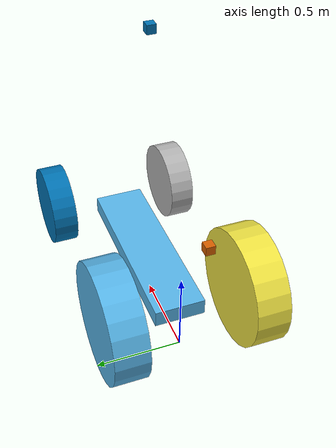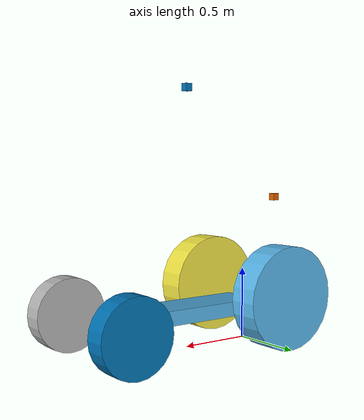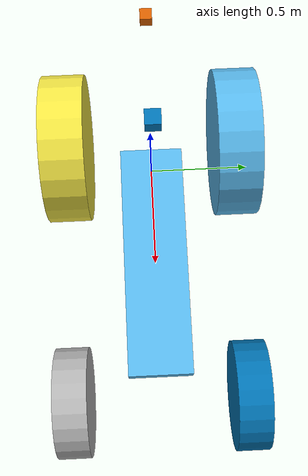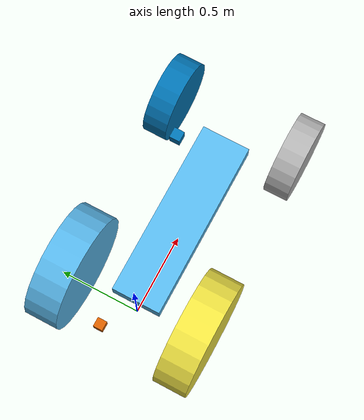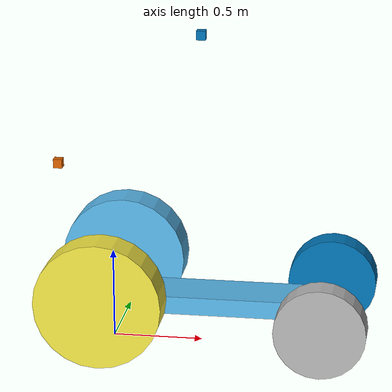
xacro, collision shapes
<?xml version="1.0"?>

<!-- TODO: double check parameters. If correct, then shape meshes to look better -->
<!-- TODO: add meshes for sensors -->
<!-- TODO: add box blade -->
<robot name="kubo" xmlns:xacro="http://www.ros.org/wiki/xacro">

  <xacro:include filename="$(find tractor_sim_description)/urdf/kubo.gazebo" />
  <xacro:include filename="$(find tractor_sim_description)/urdf/kubo_macros.urdf.xacro" />
  <xacro:include filename="$(find tractor_sim_description)/urdf/lidarx.urdf.xacro" />
  <xacro:include filename="$(find tractor_sim_description)/urdf/_d435.urdf.xacro" />

  <!-- Degree-to-radian conversions -->
  <xacro:property name="degrees_45" value="0.785398163" />
  <xacro:property name="degrees_90" value="1.57079633" />

  <!-- For documentation for visual of what these parameters are, see repo -->

  <!--Length
  of chassis (m) -->
  <xacro:property name="chassis_length" value="1.1" />
  <!--Width
  of chassis (m) -->
  <xacro:property name="chassis_width" value="0.3" />
  <!--Height
  of chassis (m) -->
  <xacro:property name="chassis_height" value="0.1" />
  <!--Mass
  of chassis (kg) -->
  <xacro:property name="chassis_mass" value="2.788" />
  <!-- Z Distance from ground (m) -->
  <xacro:property name="chassis_offset" value=".25" />
  <!-- Distance from center of front tire to center of back tire measured parallel to floor (m) -->
  <xacro:property name="wheelbase" value="1.2" />

  <!-- Front tire diameter (m) -->
  <xacro:property name="ftire_dia" value="0.5" />
  <!-- Front tire width (m) -->
  <xacro:property name="ftire_width" value="0.15" />
  <!-- Front tire mass (kg) -->
  <xacro:property name="fwheel_mass" value="0.29" />
  <!-- Distance between front wheels (inner side of wheel)-->
  <xacro:property name="fwheel_dist" value="0.8" />

  <!-- Back tire diameter (m) -->
  <xacro:property name="btire_dia" value="0.7" />
  <!-- Back tire width (m) -->
  <xacro:property name="btire_width" value="0.2" />
  <!-- Back tire mass (kg) -->
  <xacro:property name="bwheel_mass" value="0.29" />
  <!-- Distance between back wheels (inner side of wheel)-->
  <xacro:property name="bwheel_dist" value="0.8" />

  <!-- Other parameters - currently not used to improve simulation -->
  <!-- Inner diameter of tire, used for inertia measurements. 0 indicates a solid cylinder -->
  <xacro:property name="hub_dia" value="0.0" />
  <!-- For vehicles with suspension, this is how much the wheels can move up and down -->
  <xacro:property name="wheel_travel" value="0" />
  <!-- For vehicles with suspension, this sets where the suspension is mounted -->
  <xacro:property name="shock_z_offset" value="0.0655" />

  <xacro:property name="shock_eff_limit" value="1000000" />
  <xacro:property name="shock_vel_limit" value="1000000" />

  <xacro:property name="axle_eff_limit" value="512766" />
  <xacro:property name="axle_vel_limit" value="2448696" />

  <!-- motor_stall_torque is measured in N m. motor_no_load_speed is
       measured in rad/s. -->
  <xacro:property name="motor_stall_torque" value="5649" />
  <xacro:property name="motor_no_load_speed" value="4553" />

  <xacro:property name="sensorSize" value="0.05" /> <!--TODO:
  Get rid of this -->
  <xacro:property name="sensorMass" value="0.1" />

  <!-- base_link must have geometry so that its axes can be displayed in
       rviz. -->
  <link name="base_link">
    <visual>
      <geometry>
        <box size="0.01 0.01 0.01" />
      </geometry>
    </visual>
  </link>
  <gazebo reference="base_link">
    <material>Gazebo/Grey</material>
  </gazebo>

  <!-- Chassis -->
  <link name="chassis">
    <visual>
      <origin xyz="${chassis_length/2} 0 0" rpy="0 0 ${2*degrees_90}" scale="1 1 1" />
      <geometry>
        <mesh filename="package://tractor_sim_description/meshes/kubo_chassis.dae" />
      </geometry>
    </visual>
    <collision>
      <origin xyz="${chassis_length / 2} 0 ${chassis_offset}" />
      <geometry>
        <box size="${chassis_length} ${chassis_width} ${chassis_height}" />
      </geometry>
    </collision>

    <xacro:solid_cuboid_inertial
      width="${chassis_length}" depth="${chassis_width}"
      height="${chassis_height}" mass="${chassis_mass}">
      <origin xyz="0 0 ${-chassis_height / 2}" />
    </xacro:solid_cuboid_inertial>
  </link>

  <joint name="base_link_to_chassis" type="fixed">
    <parent link="base_link" />
    <child link="chassis" />
  </joint>

  <gazebo>
    <plugin name="base_link_ground_truth" filename="libgazebo_ros_p3d.so">
      <alwaysOn>true</alwaysOn>
      <updateRate>100.0</updateRate>
      <bodyName>base_link</bodyName>
      <topicName>base_link/odometry</topicName>
      <gaussianNoise>0.0</gaussianNoise>
      <frameName>world</frameName>
      <xyzOffsets>0 0 0</xyzOffsets>
      <rpyOffsets>0 0 0</rpyOffsets>
    </plugin>
  </gazebo>

  <!-- Wheels -->
  <xacro:front_wheel lr_prefix="left" fr_prefix="front"
    lr_reflect="1" fr_reflect="1" />
  <xacro:front_wheel lr_prefix="right" fr_prefix="front"
    lr_reflect="-1" fr_reflect="1" />
  <xacro:rear_wheel lr_prefix="left" fr_prefix="rear"
    lr_reflect="1" fr_reflect="-1" />
  <xacro:rear_wheel lr_prefix="right" fr_prefix="rear"
    lr_reflect="-1" fr_reflect="-1" />

  <!-- Sensors -->
  <!-- Sensor positions are relative to base_link
  IMU approximate
https://github.com/olinrobotics/gravl/wiki/Kubo:-Transforms-->
  <!-- Make sure names match gravl localization.launch -->
  <xacro:gravl_sensor sensor_name="zed"
    x_pos="0.5" y_pos="0" z_pos="1.75"
    x_rot="0" y_rot="0" z_rot="0" />

  <xacro:gravl_sensor sensor_name="imu"
    x_pos="-0.3" y_pos="0" z_pos="1"
    x_rot="0" y_rot="0" z_rot="0" />

  <gazebo reference="zed">
    <sensor name="zed" type="depth">
      <update_rate>20</update_rate>
      <camera>
        <horizontal_fov>1.09606677025</horizontal_fov>
        <image>
          <format>R8G8B8</format>
          <width>640</width>
          <height>480</height>
        </image>
        <clip>
          <near>0.5</near>
          <far>9</far>
        </clip>
      </camera>
      <plugin filename="libgazebo_ros_openni_kinect.so" name="zed_camera_controller">
        <alwaysOn>true</alwaysOn>
        <updateRate>20</updateRate>
        <imageTopicName>zed/rgb/image_raw</imageTopicName>
        <cameraInfoTopicName>zed/rgb/camera_info</cameraInfoTopicName>
        <depthImageTopicName>zed/depth/image_raw</depthImageTopicName>
        <depthImageCameraInfoTopicName>zed/depth/camera_info</depthImageCameraInfoTopicName>
        <pointCloudTopicName>zed/depth/points</pointCloudTopicName>
        <frameName>zed</frameName>
        <distortion_k1>0.0</distortion_k1>
        <distortion_k2>0.0</distortion_k2>
        <distortion_k3>0.0</distortion_k3>
        <distortion_t1>0.0</distortion_t1>
        <distortion_t2>0.0</distortion_t2>
      </plugin>
    </sensor>
  </gazebo>

  <!-- Hokuyo Laser -->

</robot>

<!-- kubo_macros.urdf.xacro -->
<robot xmlns:xacro="http://www.ros.org/wiki/xacro">
  <!-- Null inertial element. This is needed to make the model work with
       Gazebo. -->
  <xacro:macro name="null_inertial">
    <inertial>
      <mass value="0.001"/>
      <inertia ixx="0.001" ixy="0" ixz="0" iyy="0.001" iyz="0" izz="0.001"/>
    </inertial>
  </xacro:macro>

  <!-- Inertia of a solid cuboid. Width is measured along the x axis, depth
       along the y axis, and height along the z axis. -->
  <xacro:macro name="solid_cuboid_inertial"
               params="width depth height mass *origin">
    <inertial>
      <xacro:insert_block name="origin"/>
      <mass value="${mass}"/>
      <inertia ixx="${mass * (depth * depth + height * height) / 12}"
               ixy="0" ixz="0"
               iyy="${mass * (width * width + height * height) / 12}"
               iyz="0"
               izz="${mass * (width * width + depth * depth) / 12}"/>
    </inertial>
  </xacro:macro>

  <xacro:macro name="thick_walled_tube_inertial"
               params="inner_rad outer_rad height mass">
    <inertial>
      <mass value="${mass}"/>
      <inertia ixx="${(1 / 12) * mass * (3 * (inner_rad * inner_rad +
                    outer_rad * outer_rad) + height * height)}"
               ixy="0" ixz="0"
               iyy="${(1 / 12) * mass * (3 * (inner_rad * inner_rad +
                    outer_rad * outer_rad) + height * height)}"
               iyz="0"
               izz="${mass * (inner_rad * inner_rad +
                    outer_rad * outer_rad) / 2}"/>
    </inertial>
  </xacro:macro>

  <!-- Shock absorber -->
  <xacro:macro name="bshock"
               params="lr_prefix fr_prefix lr_reflect fr_reflect child">
    <joint name="${lr_prefix}_${fr_prefix}_shock" type="prismatic">
      <parent link="chassis"/>
      <child link="${child}"/>

      <origin xyz="${fr_reflect * wheelbase / 2 + (wheelbase/2)}
                   ${lr_reflect * (bwheel_dist / 2)}
                   ${(btire_dia / 2)}"/> <!-- Default: ${fr_reflect * wheelbase / 2}
                                ${lr_reflect * ((hex_hub_dist / 2) - axle_length)}
                                ${(wheel_travel / 2) - shock_z_offset}"-->
      <axis xyz="0 0 -1"/>
      <limit lower="${-wheel_travel / 2}" upper="${wheel_travel / 2}"
             effort="${shock_eff_limit}" velocity="${shock_vel_limit}"/>
    </joint>
    <transmission name="${lr_prefix}_${fr_prefix}_shock_trans">
      <type>transmission_interface/SimpleTransmission</type>
      <joint name="${lr_prefix}_${fr_prefix}_shock">
        <hardwareInterface>hardware_interface/EffortJointInterface</hardwareInterface>
      </joint>
      <actuator name="${lr_prefix}_${fr_prefix}_shock_act">
        <!-- This hardwareInterface element exists for compatibility
             with ROS Hydro. -->
        <hardwareInterface>hardware_interface/EffortJointInterface</hardwareInterface>
        <mechanicalReduction>1</mechanicalReduction>
      </actuator>
    </transmission>
  </xacro:macro>

  <xacro:macro name="fshock"
               params="lr_prefix fr_prefix lr_reflect fr_reflect child">
    <joint name="${lr_prefix}_${fr_prefix}_shock" type="prismatic">
      <parent link="chassis"/>
      <child link="${child}"/>

      <origin xyz="${fr_reflect * wheelbase / 2 + (wheelbase/2)}
                   ${lr_reflect * (fwheel_dist / 2)}
                   ${(ftire_dia / 2)}"/> <!-- Default: ${fr_reflect * wheelbase / 2}
                                ${lr_reflect * ((hex_hub_dist / 2) - axle_length)}
                                ${(wheel_travel / 2) - shock_z_offset}"-->
      <axis xyz="0 0 -1"/>
      <limit lower="${-wheel_travel / 2}" upper="${wheel_travel / 2}"
             effort="${shock_eff_limit}" velocity="${shock_vel_limit}"/>
    </joint>
    <transmission name="${lr_prefix}_${fr_prefix}_shock_trans">
      <type>transmission_interface/SimpleTransmission</type>
      <joint name="${lr_prefix}_${fr_prefix}_shock">
        <hardwareInterface>hardware_interface/EffortJointInterface</hardwareInterface>
      </joint>
      <actuator name="${lr_prefix}_${fr_prefix}_shock_act">
        <!-- This hardwareInterface element exists for compatibility
             with ROS Hydro. -->
        <hardwareInterface>hardware_interface/EffortJointInterface</hardwareInterface>
        <mechanicalReduction>1</mechanicalReduction>
      </actuator>
    </transmission>
  </xacro:macro>

  <!-- The "wheel" macro defines an axle carrier, axle, and wheel. -->
  <xacro:macro name="wheel" params="lr_prefix fr_prefix lr_reflect tire_dia tire_width wheel_mass mesh_file">
    <link name="${lr_prefix}_${fr_prefix}_axle_carrier">
      <xacro:null_inertial/>
    </link>

    <!-- The left and right axles have the same axis so that identical
         rotation values cause the wheels to rotate in the same direction. -->
    <joint name="${lr_prefix}_${fr_prefix}_axle" type="continuous">
      <parent link="${lr_prefix}_${fr_prefix}_axle_carrier"/>
      <child link="${lr_prefix}_${fr_prefix}_wheel"/>
      <origin rpy="${degrees_90} 0 0"/>
      <axis xyz="0 0 -1"/>
      <limit effort="${axle_eff_limit}" velocity="${axle_vel_limit}"/>
    </joint>
    <transmission name="${lr_prefix}_${fr_prefix}_axle_trans">
      <type>transmission_interface/SimpleTransmission</type>
      <joint name="${lr_prefix}_${fr_prefix}_axle">
        <hardwareInterface>hardware_interface/EffortJointInterface</hardwareInterface>
      </joint>
      <actuator name="${lr_prefix}_${fr_prefix}_axle_act">
        <!-- This hardwareInterface element exists for compatibility
             with ROS Hydro. -->
        <hardwareInterface>hardware_interface/EffortJointInterface</hardwareInterface>
        <mechanicalReduction>1</mechanicalReduction>
      </actuator>
    </transmission>

    <link name="${lr_prefix}_${fr_prefix}_wheel">
      <visual>
        <origin xyz="0
                     ${lr_reflect * (- (tire_width /
                     2 - (tire_width / 2)))}
                     0"
                rpy="${lr_reflect * degrees_90} 0 0"/>
       <geometry>
         <mesh filename="${mesh_file}"/>
       </geometry>
      </visual>

      <collision>
        <origin xyz="0
                     ${lr_reflect * (- (tire_width /
                     2 - (tire_width / 2)))}
                     0"/>
        <geometry>
          <cylinder radius="${tire_dia / 2}" length="${tire_width}"/>
        </geometry>
      </collision>

      <xacro:thick_walled_tube_inertial
          inner_rad="${hub_dia / 2}" outer_rad="${tire_dia / 2}"
          height="${tire_width}" mass="${wheel_mass}"/>
    </link>
  </xacro:macro>

  <!-- Front wheel -->
  <xacro:macro name="front_wheel"
               params="lr_prefix fr_prefix lr_reflect fr_reflect">
    <xacro:fshock lr_prefix="${lr_prefix}" fr_prefix="${fr_prefix}"
                 lr_reflect="${lr_reflect}" fr_reflect="${fr_reflect}"
                 child="${lr_prefix}_steering_link"/>

    <link name="${lr_prefix}_steering_link">
      <xacro:null_inertial/>
    </link>

    <joint name="${lr_prefix}_steering_joint" type="revolute">
      <parent link="${lr_prefix}_steering_link"/>
      <child link="${lr_prefix}_${fr_prefix}_axle_carrier"/>
      <axis xyz="0 0 1"/>
      <limit lower="${-degrees_45}" upper="${degrees_45}"
             effort="${motor_stall_torque}" velocity="${motor_no_load_speed}"/>
    </joint>
    <transmission name="${lr_prefix}_steering_trans">
      <type>transmission_interface/SimpleTransmission</type>
      <joint name="${lr_prefix}_steering_joint">
        <hardwareInterface>hardware_interface/EffortJointInterface</hardwareInterface>
      </joint>
      <actuator name="${lr_prefix}_steering_act">
        <!-- This hardwareInterface element exists for compatibility
             with ROS Hydro. -->
        <hardwareInterface>hardware_interface/EffortJointInterface</hardwareInterface>
        <mechanicalReduction>1</mechanicalReduction>
      </actuator>
    </transmission>

    <xacro:wheel lr_prefix="${lr_prefix}" fr_prefix="${fr_prefix}"
                 lr_reflect="${lr_reflect}"
                 tire_dia="${ftire_dia}" tire_width="${ftire_width}"
                 wheel_mass="${fwheel_mass}"
                 mesh_file = "package://tractor_sim_description/meshes/kubo_front_tire.dae"/>
  </xacro:macro>

  <!-- Rear wheel -->
  <xacro:macro name="rear_wheel"
               params="lr_prefix fr_prefix lr_reflect fr_reflect">
    <xacro:bshock lr_prefix="${lr_prefix}" fr_prefix="${fr_prefix}"
                 lr_reflect="${lr_reflect}" fr_reflect="${fr_reflect}"
                 child="${lr_prefix}_${fr_prefix}_axle_carrier"/>
    <xacro:wheel lr_prefix="${lr_prefix}" fr_prefix="${fr_prefix}"
                 lr_reflect="${lr_reflect}"
                 tire_dia="${btire_dia}" tire_width="${btire_width}"
                 wheel_mass="${bwheel_mass}"
                 mesh_file = "package://tractor_sim_description/meshes/kubo_back_tire.dae"/>
  </xacro:macro>

  <xacro:macro name="gravl_sensor"
         params = "sensor_name x_pos y_pos z_pos x_rot y_rot z_rot">
     <link name="${sensor_name}">
       <collision>
         <origin xyz="0 0 0" rpy="0 0 0"/>
         <geometry>
           <box size="${sensorSize} ${sensorSize} ${sensorSize}"/> <!-- CHANGE LATER-->
         </geometry>
       </collision>

       <visual>
         <origin xyz="0 0 0" rpy="0 0 0"/>
         <geometry>
           <box size="${sensorSize} ${sensorSize} ${sensorSize}"/>
         </geometry>
       </visual>

       <inertial>
         <mass value="${sensorMass}"/>
         <origin xyz="0 0 0" rpy="0 0 0"/>
         <box_inertia m="${sensorMass}" x="${sensorMass}" y="${sensorMass}" z="${sensorMass}" />
         <inertia ixx="1e-6" ixy="0" ixz="0" iyy="1e-6" iyz="0" izz="1e-6" />
       </inertial>
     </link>

     <joint name="${sensor_name}_joint" type="fixed">
       <axis xyz="0 1 0" />
       <origin xyz="${x_pos} ${y_pos} ${z_pos}" rpy="${x_rot} ${y_rot} ${z_rot}"/> <!-- CHANGE LATER-->
       <parent link="base_link"/>
       <child link="${sensor_name}"/>
     </joint>

  </xacro:macro>

</robot>
